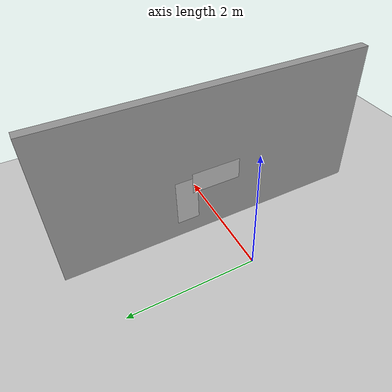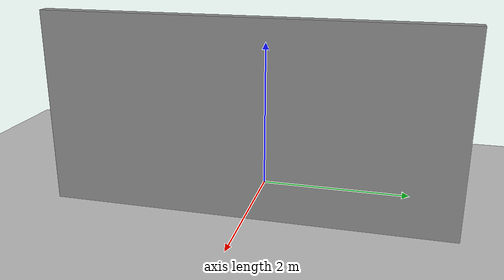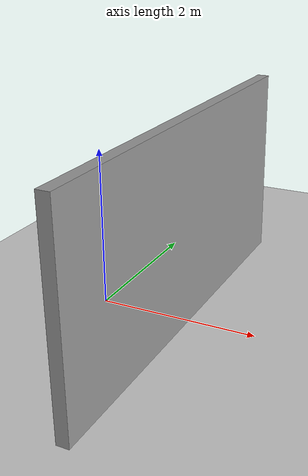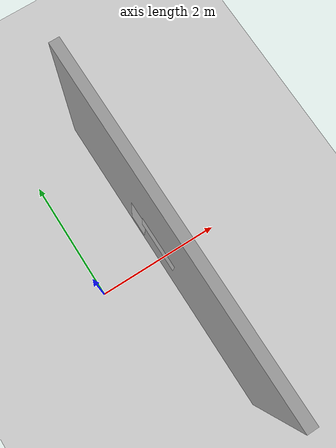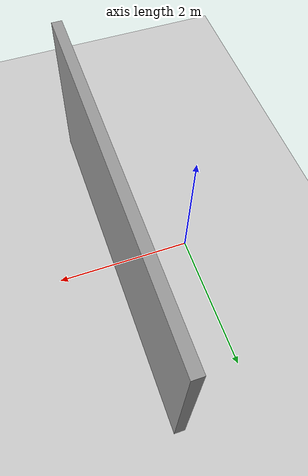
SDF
<sdf version="1.6">
 <world name="default">
  <light name="sun" type="directional">
   <pose>0 0 10 0 -0 0</pose>
   <diffuse>0.8 0.8 0.8 1</diffuse>
   <specular>0.2 0.2 0.2 1</specular>
   <attenuation>
    <range>1000</range>
    <constant>0.9</constant>
    <linear>0.01</linear>
    <quadratic>0.001</quadratic>
   </attenuation>
   <direction>-0.5 0.1 -0.9</direction>
  </light>
  <model name="ground_plane">
   <static>1</static>
   <link name="link">
    <collision name="collision">
     <geometry><plane><normal>0 0 1</normal><size>100 100</size></plane></geometry>
     <surface><friction><ode><mu>100</mu><mu2>50</mu2></ode></friction></surface>
    </collision>
    <visual name="visual">
     <cast_shadows>0</cast_shadows>
     <geometry><plane><normal>0 0 1</normal><size>100 100</size></plane></geometry>
     <material>
      <script><uri>file://media/materials/scripts/gazebo.material</uri><name>Gazebo/Grey</name></script>
     </material>
    </visual>
   </link>
  </model>
  <gravity>0 0 -9.8</gravity>
  <magnetic_field>6e-06 2.3e-05 -4.2e-05</magnetic_field>
  <atmosphere type="adiabatic"/>
  <physics name="default_physics" default="0" type="ode">
   <max_step_size>0.001</max_step_size>
   <real_time_factor>1</real_time_factor>
   <real_time_update_rate>1000</real_time_update_rate>
  </physics>
  <scene><ambient>0.4 0.4 0.4 1</ambient><background>0.7 0.7 0.7 1</background><shadows>1</shadows></scene>
  <audio><device>default</device></audio>
  <spherical_coordinates>
   <surface_model>EARTH_WGS84</surface_model>
   <latitude_deg>0</latitude_deg>
   <longitude_deg>0</longitude_deg>
   <elevation>0</elevation>
   <heading_deg>0</heading_deg>
  </spherical_coordinates>
  <model name="Untitled">
   <pose>1.08549 0 0 0 -0 0</pose>
   <link name="Wall_0">
    <collision name="Wall_0_Collision">
     <geometry><box><size>5.15 0.15 2.5</size></box></geometry>
     <pose>0 0 1.25 0 -0 0</pose>
    </collision>
    <visual name="Wall_0_Visual">
     <pose>0 0 1.25 0 -0 0</pose>
     <geometry><box><size>5.15 0.15 2.5</size></box></geometry>
     <material>
      <script><uri>file://media/materials/scripts/gazebo.material</uri><name>Gazebo/Grey</name></script>
      <ambient>1 1 1 1</ambient>
     </material>
     <meta><layer>0</layer></meta>
    </visual>
    <pose>0 0 0 0 -0 1.5708</pose>
   </link>
   <static>1</static>
  </model>
  <model name="elevator_updown_button">
   <static>1</static>
   <link name="link">
    <collision name="collision">
     <geometry><plane><normal>0 0 1</normal><size>100 100</size></plane></geometry>
     <surface><friction><ode><mu>100</mu><mu2>50</mu2></ode></friction></surface>
    </collision>
    <visual name="visual">
     <cast_shadows>0</cast_shadows>
     <geometry><plane><normal>0 0 1</normal><size>0.8 0.36</size></plane></geometry>
     <material>
      <script>
       <uri>model://elevator_updown_button/materials/scripts</uri>
       <uri>model://elevator_updown_button/materials/textures/</uri>
       <name>elevator_updown_button/Image</name>
      </script>
     </material>
    </visual>
   </link>
   <pose>0.99 0.58 0.7 1.57 1.57 -1.57</pose>
  </model>
  <model name="elevator_num_button">
   <static>1</static>
   <link name="link">
    <collision name="collision">
     <geometry><plane><normal>0 0 1</normal><size>100 100</size></plane></geometry>
     <surface><friction><ode><mu>100</mu><mu2>50</mu2></ode></friction></surface>
    </collision>
    <visual name="visual">
     <cast_shadows>0</cast_shadows>
     <geometry><plane><normal>0 0 1</normal><size>0.8 0.36</size></plane></geometry>
     <material>
      <script>
       <uri>model://elevator_num_button/materials/scripts</uri>
       <uri>model://elevator_num_button/materials/textures/</uri>
       <name>elevator_num_button/Image</name>
      </script>
     </material>
    </visual>
   </link>
   <pose>0.99 0.08 1 1.57 0 -1.57</pose>
  </model>
 </world>
</sdf>
